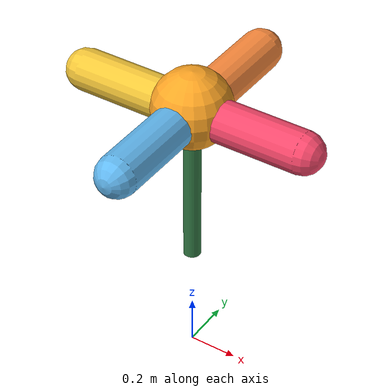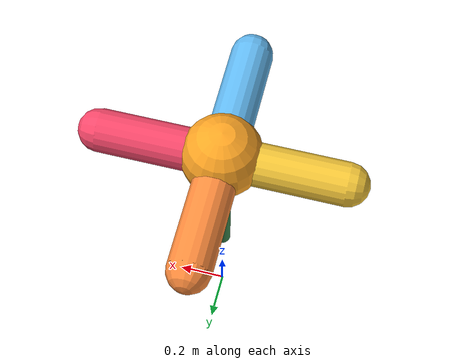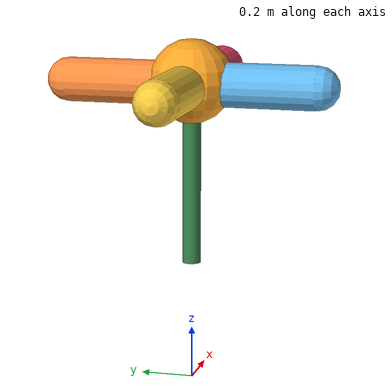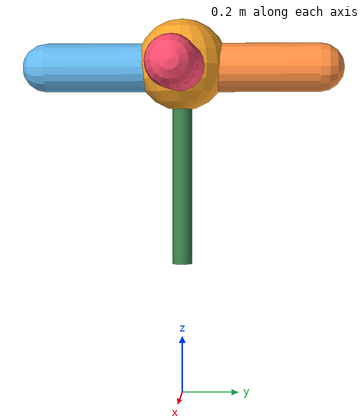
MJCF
<!-- Copyright 2026 The MuJoCo Metal contributors; Apache-2.0. -->
<mujoco model="kinetic_sculpture">
  <compiler angle="radian" inertiafromgeom="true"/>
  <option timestep=".002" integrator="Euler" gravity="0 0 -9.81">
    <flag contact="disable"/>
  </option>
  <default>
    <joint damping=".08" stiffness=".9" springref=".55"/>
    <geom contype="0" conaffinity="0" density="320"/>
  </default>
  <visual><global offwidth="1200" offheight="720"/><headlight ambient=".5 .5 .5" diffuse=".7 .7 .7"/></visual>
  <worldbody>
    <light pos="0 -1 2"/>
    <body name="stem" pos="0 0 .8">
      <geom name="stem_visual" type="cylinder" size=".035 .34" rgba=".2 .48 .27 1"/>
      <geom name="heart" type="sphere" pos="0 0 .36" size=".16" rgba="1 .65 .14 1"/>
      <body name="petal_east" quat="1 0 0 0" gravcomp=".65">
        <joint name="east_fold" type="hinge" axis="1 0 0" springref=".55" stiffness=".9" damping=".08"/>
        <geom name="east" type="capsule" fromto="0 0 .35 .48 0 .35" size=".085" rgba=".98 .28 .42 1"/>
      </body>
      <body name="petal_north" quat=".7071068 0 0 .7071068" gravcomp=".65">
        <joint name="north_fold" type="hinge" axis="1 0 0" springref="-.48" stiffness=".9" damping=".08"/>
        <geom name="north" type="capsule" fromto="0 0 .35 .48 0 .35" size=".085" rgba="1 .55 .24 1"/>
      </body>
      <body name="petal_west" quat="0 0 0 1" gravcomp=".65">
        <joint name="west_fold" type="hinge" axis="1 0 0" springref=".62" stiffness=".9" damping=".08"/>
        <geom name="west" type="capsule" fromto="0 0 .35 .48 0 .35" size=".085" rgba=".96 .78 .22 1"/>
      </body>
      <body name="petal_south" quat=".7071068 0 0 -.7071068" gravcomp=".65">
        <joint name="south_fold" type="hinge" axis="1 0 0" springref="-.55" stiffness=".9" damping=".08"/>
        <geom name="south" type="capsule" fromto="0 0 .35 .48 0 .35" size=".085" rgba=".38 .72 .94 1"/>
      </body>
    </body>
  </worldbody>
</mujoco>
